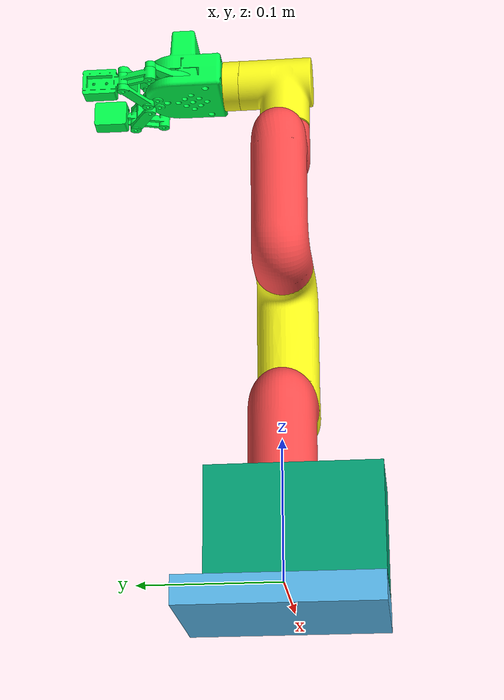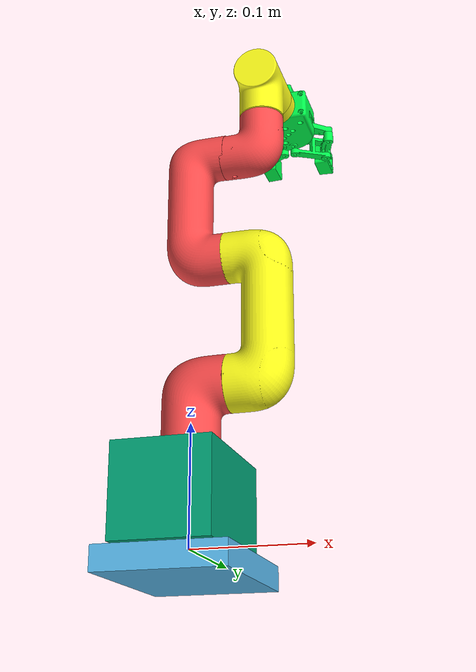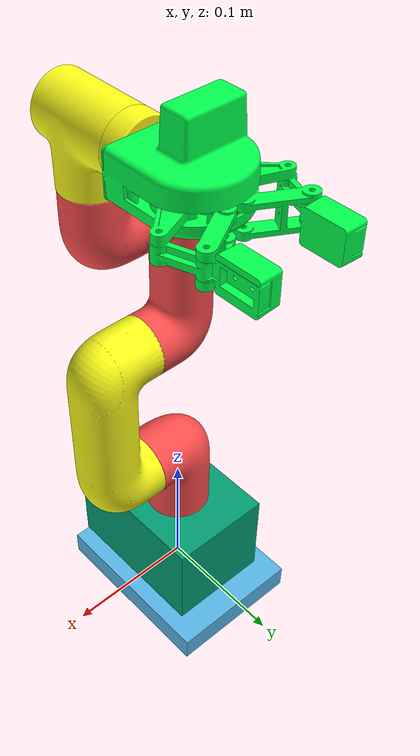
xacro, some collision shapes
<?xml version="1.0"?>
<robot xmlns:xacro="http://www.ros.org/wiki/xacro" name="robotic_arm_280">
    <xacro:arg name="robot_name" default="robotic_arm_280"/>
    <xacro:arg name="add_world" default="true"/>
    <xacro:arg name="base_link" default="base_link"/>
    <xacro:arg name="base_type" default="g_shape"/>
    <xacro:arg name="flange_link" default="link6_flange"/>
    <xacro:arg name="gripper_type" default="adaptive_gripper"/>
    <xacro:arg name="prefix" default=""/>
    <xacro:arg name="use_camera" default="false"/>
    <xacro:arg name="use_gazebo" default="false"/>
    <xacro:arg name="use_gripper" default="true"/>

    <xacro:if value="$(arg add_world)">
      <link name="world"/>
      <joint name="$(arg prefix)virtual_joint" type="fixed">
          <parent link="world"/>
          <child link="$(arg prefix)$(arg base_link)"/>
          <origin xyz="0 0 0" rpy="0 0 0"/>
      </joint>
    </xacro:if>

    <xacro:property name="current_base" value="$(arg base_type)"/>
    <xacro:if value="${current_base == 'g_shape'}">
        <xacro:include filename="$(find robotic_arm_description)/urdf/mech/g_shape_base_v2_0.urdf.xacro"/>
        <xacro:g_shape_base
            base_link="$(arg base_link)"
            prefix="$(arg prefix)"/>
    </xacro:if>

    <xacro:include filename="$(find robotic_arm_description)/urdf/mech/robotic_arm_280_arm.urdf.xacro"/>
    <xacro:robotic_arm_280_arm
      base_link="$(arg base_link)"
      flange_link="$(arg flange_link)"
      prefix="$(arg prefix)">
      <origin xyz="0 0 0" rpy="0 0 0"/>
    </xacro:robotic_arm_280_arm>

    <xacro:if value="$(arg use_gripper)">
        <xacro:property name="current_gripper" value="$(arg gripper_type)"/>
        <xacro:if value="${current_gripper == 'adaptive_gripper'}">
            <xacro:include filename="$(find robotic_arm_description)/urdf/mech/adaptive_gripper.urdf.xacro"/>
            <xacro:adaptive_gripper
                parent="$(arg flange_link)"
                prefix="$(arg prefix)">
                <origin xyz="0 0 0.034" rpy="1.579 0 0"/>
            </xacro:adaptive_gripper>
        </xacro:if>
    </xacro:if>

    <xacro:include filename="$(find robotic_arm_description)/urdf/control/gazebo_sim_ros2_control.urdf.xacro" />
    <xacro:load_gazebo_sim_ros2_control_plugin
      robot_name="$(arg robot_name)"
      use_gazebo="$(arg use_gazebo)"/>

    <xacro:include filename="$(find robotic_arm_description)/urdf/control/robotic_arm_280_ros2_control.urdf.xacro" />
    <xacro:robotic_arm_ros2_control
      prefix="$(arg prefix)"
      flange_link="$(arg flange_link)"
      use_gazebo="$(arg use_gazebo)"/>

</robot>

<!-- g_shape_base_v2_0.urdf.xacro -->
<robot xmlns:xacro="http://wiki.ros.org/xacro">
    <xacro:macro name="g_shape_base" params="base_link prefix">
        <link name="${prefix}${base_link}">
            <inertial>
                <origin xyz="0 0 0.0" rpy="0 0 0"/>
                <mass value="0.33"/>
                <inertia
                    ixx="0.000784" ixy="0.0" ixz="0.0"
                    iyy="0.000867" iyz="0.0"
                    izz="0.001598"/>
            </inertial>
            <visual>
                <geometry>
                    <mesh filename="file://$(find robotic_arm_description)/meshes/g_shape_base_v2_0/visual/base_link.dae"/>
                </geometry>
                <origin xyz="0.0 0 -0.03" rpy="0 0 ${pi/2}"/>
            </visual>
            <collision>
                <geometry>
                    <box size="0.105 0.14 0.02"/>
                </geometry>
                <origin xyz="0.0 0.0 -0.015" rpy="0 0 0"/>
            </collision>
        </link>

        <gazebo reference="${prefix}${base_link}">
            <visual>
                <material>
                    <ambient>0.5 0.5 0.5 1</ambient>
                    <diffuse>0.5 0.5 0.5 1</diffuse>
                    <specular>0.5 0.5 0.5 1</specular>
                </material>
            </visual>
        </gazebo>
    </xacro:macro>
</robot>

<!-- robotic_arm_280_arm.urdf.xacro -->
<robot xmlns:xacro="http://www.ros.org/wiki/xacro">

  <xacro:property name="joint_effort" value="56.0"/>
  <xacro:property name="joint_velocity" value="2.792527"/>
  <xacro:property name="joint_damping" value="0.0"/>
  <xacro:property name="joint_friction" value="0.0"/>

  <xacro:property name="link1_mass" value="0.12"/>
  <xacro:property name="link2_mass" value="0.19"/>
  <xacro:property name="link3_mass" value="0.16"/>
  <xacro:property name="link4_mass" value="0.124"/>
  <xacro:property name="link5_mass" value="0.11"/>
  <xacro:property name="link6_mass" value="0.0739"/>
  <xacro:property name="flange_mass" value="0.035"/>

  <material name="orange">
        <color rgba="1 1 0.1 1"/>
  </material>

  <xacro:macro name="link_inertial" params="mass ixx iyy izz">
    <inertial>
      <origin xyz="0 0 0.0" rpy="0 0 0"/>
      <mass value="${mass}"/>
      <inertia
        ixx="${ixx}" ixy="0.0" ixz="0.0"
        iyy="${iyy}" iyz="0.0"
        izz="${izz}"/>
    </inertial>
  </xacro:macro>

  <xacro:macro name="material_visual" params="ref_link ambient diffuse specular">
    <gazebo reference="${ref_link}">
      <visual>
        <material>
          <ambient>${ambient}</ambient>
          <diffuse>${diffuse}</diffuse>
          <specular>${specular}</specular>
        </material>
      </visual>
    </gazebo>
  </xacro:macro>

  <xacro:macro name="robotic_arm_280_arm" params="base_link flange_link prefix *origin">

    <link name="${prefix}link1">
      <xacro:link_inertial mass="${link1_mass}" ixx="0.000148" iyy="0.000148" izz="0.000096"/>
      <visual>
        <geometry>
          <mesh filename="file://$(find robotic_arm_description)/meshes/robotic_arm_280/visual/link1.dae"/>
        </geometry>
        <origin xyz="0.0 0 0" rpy="0 0 ${-pi/2}"/>
      </visual>
      <collision>
        <geometry>
          <box size="0.08 0.12 0.075"/>
        </geometry>
        <origin xyz="0.0 -0.01 0.034" rpy="0 0 0"/>
      </collision>
    </link>

    <link name="${prefix}link2">
      <xacro:link_inertial mass="${link2_mass}" ixx="0.000148" iyy="0.000148" izz="0.000096"/>
      <visual>
        <geometry>
          <mesh filename="file://$(find robotic_arm_description)/meshes/robotic_arm_280/visual/link2.dae"/>
        </geometry>
        <origin xyz="0.0 0 -0.06096" rpy="0 0 ${-pi/2}"/>
      </visual>
      <collision>
        <geometry>
          <cylinder radius="0.025" length="0.085"/>
        </geometry>
        <origin xyz="0.0 0 -0.02" rpy="0 0 ${-pi/2}"/>
      </collision>
    </link>

    <link name="${prefix}link3">
      <xacro:link_inertial mass="${link3_mass}" ixx="0.000148" iyy="0.000148" izz="0.000096"/>
      <visual>
        <geometry>
          <mesh filename="file://$(find robotic_arm_description)/meshes/robotic_arm_280/visual/link3.dae"/>
        </geometry>
        <origin xyz="0.0 0 0.03256" rpy="0 ${-pi/2} 0"/>
        <material name="orange"/>
      </visual>
      <collision>
        <geometry>
          <cylinder radius="0.025" length="0.15"/>
        </geometry>
        <origin xyz="-0.058 0 0.059" rpy="0 ${-pi/2} 0"/>
      </collision>
    </link>

    <link name="${prefix}link4">
      <xacro:link_inertial mass="${link4_mass}" ixx="0.000103" iyy="0.000103" izz="0.000096"/>
      <visual>
        <geometry>
          <mesh filename="file://$(find robotic_arm_description)/meshes/robotic_arm_280/visual/link4.dae"/>
        </geometry>
        <origin xyz="0.0 0 0.03056" rpy="0 ${-pi/2} 0"/>
      </visual>
      <collision>
        <geometry>
          <cylinder radius="0.025" length="0.125"/>
        </geometry>
        <origin xyz="-0.05 0 0.0" rpy="0 ${-pi/2} 0"/>
      </collision>
    </link>

    <link name="${prefix}link5">
      <xacro:link_inertial mass="${link5_mass}" ixx="0.000103" iyy="0.000103" izz="0.000096"/>
      <visual>
        <geometry>
          <mesh filename="file://$(find robotic_arm_description)/meshes/robotic_arm_280/visual/link5.dae"/>
        </geometry>
        <origin xyz="0.0 0 -0.03356" rpy="${-pi/2} 0 0"/>
      </visual>
      <collision>
        <geometry>
          <box size="0.03 0.035 0.05"/>
        </geometry>
        <origin xyz="0.0 0 -0.005" rpy="0 0.0 0"/>
      </collision>
    </link>

    <link name="${prefix}link6">
      <xacro:link_inertial mass="${link6_mass}" ixx="0.00006649" iyy="0.00006649" izz="0.000096"/>
      <visual>
        <geometry>
          <mesh filename="file://$(find robotic_arm_description)/meshes/robotic_arm_280/visual/link6.dae"/>
        </geometry>
        <origin xyz="0 0.00 -0.038" rpy="0 0 0"/>
        <material name="orange"/>
      </visual>
      <collision>
        <geometry>
          <cylinder radius="0.025" length="0.06"/>
        </geometry>
        <origin xyz="0 0.00 0.0" rpy="${-pi/2} 0 0"/>
      </collision>
    </link>

    <link name="${prefix}${flange_link}">
      <xacro:link_inertial mass="${flange_mass}" ixx="0.0000149" iyy="0.0000149" izz="0.0000196"/>
      <visual>
        <geometry>
          <mesh filename="file://$(find robotic_arm_description)/meshes/robotic_arm_280/visual/link7.dae"/>
        </geometry>
        <origin xyz="0.0 0 -0.012" rpy="0 0 0"/>
        <material name="orange"/>
      </visual>
      <collision>
        <geometry>
          <cylinder radius="0.02" length="0.02"/>
        </geometry>
        <origin xyz="0 0.00 0.0" rpy="0 0 0"/>
      </collision>
    </link>

    <joint name="${prefix}${base_link}_to_${prefix}link1" type="fixed">
      <parent link="${prefix}${base_link}"/>
      <child link="${prefix}link1"/>
      <xacro:insert_block name="origin"/>
    </joint>

    <joint name="${prefix}link1_to_${prefix}link2" type="revolute">
      <axis xyz="0 0 1"/>
      <limit effort="${joint_effort}" lower="-2.879793" upper="2.879793" velocity="${joint_velocity}"/>
      <parent link="${prefix}link1"/>
      <child link="${prefix}link2"/>
      <origin xyz="0 0 0.13156" rpy="0 0 ${pi/2}"/>
      <dynamics damping="${joint_damping}" friction="${joint_friction}"/>
    </joint>

    <joint name="${prefix}link2_to_${prefix}link3" type="revolute">
      <axis xyz="0 0 1"/>
      <limit effort="${joint_effort}" lower="-2.879793" upper="2.879793" velocity="${joint_velocity}"/>
      <parent link="${prefix}link2"/>
      <child link="${prefix}link3"/>
      <origin xyz="0 0 -0.001" rpy="0 ${pi/2} ${-pi/2}"/>
      <dynamics damping="${joint_damping}" friction="${joint_friction}"/>
    </joint>

    <joint name="${prefix}link3_to_${prefix}link4" type="revolute">
      <axis xyz="0 0 1"/>
      <limit effort="${joint_effort}" lower="-2.879793" upper="2.879793" velocity="${joint_velocity}"/>
      <parent link="${prefix}link3"/>
      <child link="${prefix}link4"/>
      <origin xyz="-0.1104 0 0" rpy="0 0 0"/>
      <dynamics damping="${joint_damping}" friction="${joint_friction}"/>
    </joint>

    <joint name="${prefix}link4_to_${prefix}link5" type="revolute">
      <axis xyz="0 0 1"/>
      <limit effort="${joint_effort}" lower="-2.879793" upper="2.879793" velocity="${joint_velocity}"/>
      <parent link="${prefix}link4"/>
      <child link="${prefix}link5"/>
      <origin xyz="-0.096 0 0.06062" rpy="0 0 ${-pi/2}"/>
      <dynamics damping="${joint_damping}" friction="${joint_friction}"/>
    </joint>

    <joint name="${prefix}link5_to_${prefix}link6" type="revolute">
      <axis xyz="0 0 1"/>
      <limit effort="${joint_effort}" lower="-2.879793" upper="2.879793" velocity="${joint_velocity}"/>
      <parent link="${prefix}link5"/>
      <child link="${prefix}link6"/>
      <origin xyz="0 -0.07318 0" rpy="${pi/2} ${-pi/2} 0"/>
      <dynamics damping="${joint_damping}" friction="${joint_friction}"/>
    </joint>

    <joint name="${prefix}link6_to_${prefix}${flange_link}" type="revolute">
      <axis xyz="0 0 1"/>
      <limit effort="${joint_effort}" lower="-3.05" upper="3.05" velocity="${joint_velocity}"/>
      <parent link="${prefix}link6"/>
      <child link="${prefix}${flange_link}"/>
      <origin xyz="0 0.0456 0" rpy="${-pi/2} 0 0"/>
      <dynamics damping="${joint_damping}" friction="${joint_friction}"/>
    </joint>

    <xacro:material_visual ref_link="${prefix}link1" ambient="0.5 0.5 0.5 1" diffuse="0.5 0.5 0.5 1" specular="0.5 0.5 0.5 1"/>
    <xacro:material_visual ref_link="${prefix}link2" ambient="1 1 1 1" diffuse="1 1 1 1" specular="1 1 1 1"/>
    <xacro:material_visual ref_link="${prefix}link3" ambient="1 1 1 1" diffuse="1 1 1 1" specular="1 1 1 1"/>
    <xacro:material_visual ref_link="${prefix}link4" ambient="1 1 1 1" diffuse="1 1 1 1" specular="1 1 1 1"/>
    <xacro:material_visual ref_link="${prefix}link5" ambient="1 1 1 1" diffuse="1 1 1 1" specular="1 1 1 1"/>
    <xacro:material_visual ref_link="${prefix}link6" ambient="1 1 1 1" diffuse="1 1 1 1" specular="1 1 1 1"/>
    <xacro:material_visual ref_link="${prefix}${flange_link}" ambient="0.5 0.5 0.5 1" diffuse="0.5 0.5 0.5 1" specular="0.5 0.5 0.5 1"/>

  </xacro:macro>
</robot>

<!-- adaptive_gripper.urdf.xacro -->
<robot xmlns:xacro="http://www.ros.org/wiki/xacro">

  <xacro:property name="joint_effort" value="56.0"/>
  <xacro:property name="joint_velocity" value="2.792527"/>
  <xacro:property name="joint_damping" value="0.0"/>
  <xacro:property name="joint_friction" value="0.0"/>

  <xacro:property name="gripper_link_mass" value="0.007"/>
  <xacro:property name="gripper_link_ixx" value="1e-6"/>
  <xacro:property name="gripper_link_iyy" value="1e-6"/>
  <xacro:property name="gripper_link_izz" value="1e-6"/>

  <xacro:macro name="gripper_link_inertial">
    <inertial>
      <origin xyz="0 0 0.0" rpy="0 0 0"/>
      <mass value="${gripper_link_mass}"/>
      <inertia
        ixx="${gripper_link_ixx}" ixy="0.0" ixz="0.0"
        iyy="${gripper_link_iyy}" iyz="0.0"
        izz="${gripper_link_izz}"/>
    </inertial>
  </xacro:macro>

  <xacro:macro name="adaptive_gripper" params="parent prefix *origin">

    <link name="${prefix}gripper_base">
      <inertial>
        <origin xyz="0 0 0.0" rpy="0 0 0"/>
        <mass value="0.07"/>
        <inertia
          ixx="0.000010725" ixy="0.0" ixz="0.0"
          iyy="0.000014392" iyz="0.0"
          izz="0.000018517"/>
      </inertial>
      <visual>
        <geometry>
          <mesh filename="file://$(find robotic_arm_description)/meshes/adaptive_gripper/visual/gripper_base.dae"/>
        </geometry>
        <origin xyz="0.0 0.0 -0.012" rpy="0 0 0"/>
      </visual>
      <collision>
        <geometry>
          <box size="0.065 0.025 0.025"/>
        </geometry>
        <origin xyz="0.0 0.0 0.0" rpy="0 0 0"/>
      </collision>
    </link>

    <joint name="${prefix}${parent}_to_${prefix}gripper_base" type="fixed">
      <parent link="${prefix}${parent}"/>
      <child link="${prefix}gripper_base"/>
      <xacro:insert_block name="origin"/>
    </joint>

    <link name="${prefix}gripper_left1">
      <xacro:gripper_link_inertial/>
      <visual>
        <geometry>
          <mesh filename="file://$(find robotic_arm_description)/meshes/adaptive_gripper/visual/gripper_left1.dae"/>
        </geometry>
        <origin xyz="0.039 -0.0133 -0.012" rpy="0 0 0"/>
      </visual>
      <collision>
        <geometry>
          <box size="0.013 0.02 0.015"/>
        </geometry>
        <origin xyz="0.013 0.042 -0.010" rpy="0 0 0"/>
      </collision>
    </link>

    <link name="${prefix}gripper_left2">
      <xacro:gripper_link_inertial/>
      <visual>
        <geometry>
          <mesh filename="file://$(find robotic_arm_description)/meshes/adaptive_gripper/visual/gripper_left2.dae"/>
        </geometry>
        <origin xyz="0.005 -0.0195 -0.012" rpy="0 0 0"/>
      </visual>
      <collision>
        <geometry>
          <box size="0.02 0.02 0.02"/>
        </geometry>
        <origin xyz="-0.025 0.0 -0.010" rpy="0 0 0"/>
      </collision>
    </link>

    <link name="${prefix}gripper_left3">
      <xacro:gripper_link_inertial/>
      <visual>
        <geometry>
          <mesh filename="file://$(find robotic_arm_description)/meshes/adaptive_gripper/visual/gripper_left3.dae"/>
        </geometry>
        <origin xyz="0.012 0.0025 -0.012" rpy="0 0 0"/>
      </visual>
      <collision>
        <geometry>
          <box size="0.01 0.01 0.01"/>
        </geometry>
        <origin xyz="-0.014 0.005 0.005" rpy="0 0 0"/>
      </collision>
    </link>

    <link name="${prefix}gripper_right1">
      <xacro:gripper_link_inertial/>
      <visual>
        <geometry>
          <mesh filename="file://$(find robotic_arm_description)/meshes/adaptive_gripper/visual/gripper_right1.dae"/>
        </geometry>
        <origin xyz="-0.039 -0.0133 -0.012" rpy="0 0 0"/>
      </visual>
      <collision>
        <geometry>
          <box size="0.013 0.02 0.015"/>
        </geometry>
        <origin xyz="-0.013 0.042 -0.010" rpy="0 0 0"/>
      </collision>
    </link>

    <link name="${prefix}gripper_right2">
      <xacro:gripper_link_inertial/>
      <visual>
        <geometry>
          <mesh filename="file://$(find robotic_arm_description)/meshes/adaptive_gripper/visual/gripper_right2.dae"/>
        </geometry>
        <origin xyz="-0.005 -0.0195 -0.012" rpy="0 0 0"/>
      </visual>
      <collision>
        <geometry>
          <box size="0.02 0.02 0.02"/>
        </geometry>
        <origin xyz="0.025 0.0 -0.010" rpy="0 0 0"/>
      </collision>
    </link>

    <link name="${prefix}gripper_right3">
      <xacro:gripper_link_inertial/>
      <visual>
        <geometry>
          <mesh filename="file://$(find robotic_arm_description)/meshes/adaptive_gripper/visual/gripper_right3.dae"/>
        </geometry>
        <origin xyz="-0.012 0.0025 -0.012" rpy="0 0 0"/>
      </visual>
      <collision>
        <geometry>
          <box size="0.01 0.01 0.01"/>
        </geometry>
        <origin xyz="0.014 0.005 0.005" rpy="0 0 0"/>
      </collision>
    </link>

    <joint name="${prefix}gripper_controller" type="revolute">
      <axis xyz="0 0 1"/>
      <limit effort="${joint_effort}" lower="-0.7" upper="0.15" velocity="${joint_velocity}"/>
      <parent link="${prefix}gripper_base"/>
      <child link="${prefix}gripper_left3"/>
      <origin xyz="-0.012 0.005 0" rpy="0 0 0"/>
      <dynamics damping="${joint_damping}" friction="${joint_friction}"/>
    </joint>

    <joint name="${prefix}gripper_base_to_${prefix}gripper_left2" type="revolute">
      <axis xyz="0 0 1"/>
      <limit effort="${joint_effort}" lower="-0.8" upper="0.5" velocity="${joint_velocity}"/>
      <parent link="${prefix}gripper_base"/>
      <child link="${prefix}gripper_left2"/>
      <origin xyz="-0.005 0.027 0" rpy="0 0 0"/>
      <mimic joint="${prefix}gripper_controller" multiplier="1.0" offset="0"/>
      <dynamics damping="${joint_damping}" friction="${joint_friction}"/>
    </joint>

    <joint name="${prefix}gripper_left3_to_${prefix}gripper_left1" type="revolute">
      <axis xyz="0 0 1"/>
      <limit effort="${joint_effort}" lower="-0.5" upper="0.5" velocity="${joint_velocity}"/>
      <parent link="${prefix}gripper_left3"/>
      <child link="${prefix}gripper_left1"/>
      <origin xyz="-0.027 0.016 0" rpy="0 0 0"/>
      <mimic joint="${prefix}gripper_controller" multiplier="-1.0" offset="0"/>
      <dynamics damping="${joint_damping}" friction="${joint_friction}"/>
    </joint>

    <joint name="${prefix}gripper_base_to_${prefix}gripper_right3" type="revolute">
      <axis xyz="0 0 1"/>
      <limit effort="${joint_effort}" lower="-0.15" upper="0.7" velocity="${joint_velocity}"/>
      <parent link="${prefix}gripper_base"/>
      <child link="${prefix}gripper_right3"/>
      <origin xyz="0.012 0.005 0" rpy="0 0 0"/>
      <mimic joint="${prefix}gripper_controller" multiplier="-1.0" offset="0"/>
      <dynamics damping="${joint_damping}" friction="${joint_friction}"/>
    </joint>

    <joint name="${prefix}gripper_base_to_${prefix}gripper_right2" type="revolute">
      <axis xyz="0 0 1"/>
      <limit effort="${joint_effort}" lower="-0.5" upper="0.8" velocity="${joint_velocity}"/>
      <parent link="${prefix}gripper_base"/>
      <child link="${prefix}gripper_right2"/>
      <origin xyz="0.005 0.027 0" rpy="0 0 0"/>
      <mimic joint="${prefix}gripper_controller" multiplier="-1.0" offset="0"/>
      <dynamics damping="${joint_damping}" friction="${joint_friction}"/>
    </joint>

    <joint name="${prefix}gripper_right3_to_${prefix}gripper_right1" type="revolute">
      <axis xyz="0 0 1"/>
      <limit effort="${joint_effort}" lower="-0.5" upper="0.5" velocity="${joint_velocity}"/>
      <parent link="${prefix}gripper_right3"/>
      <child link="${prefix}gripper_right1"/>
      <origin xyz="0.027 0.016 0" rpy="0 0 0"/>
      <mimic joint="${prefix}gripper_controller" multiplier="1.0" offset="0"/>
      <dynamics damping="${joint_damping}" friction="${joint_friction}"/>
    </joint>

    <gazebo reference="${prefix}gripper_base">
      <visual>
        <material>
          <ambient>1 1 1 1</ambient>
          <diffuse>1 1 1 1</diffuse>
          <specular>1 1 1 1</specular>
        </material>
      </visual>
    </gazebo>

  </xacro:macro>
</robot>
